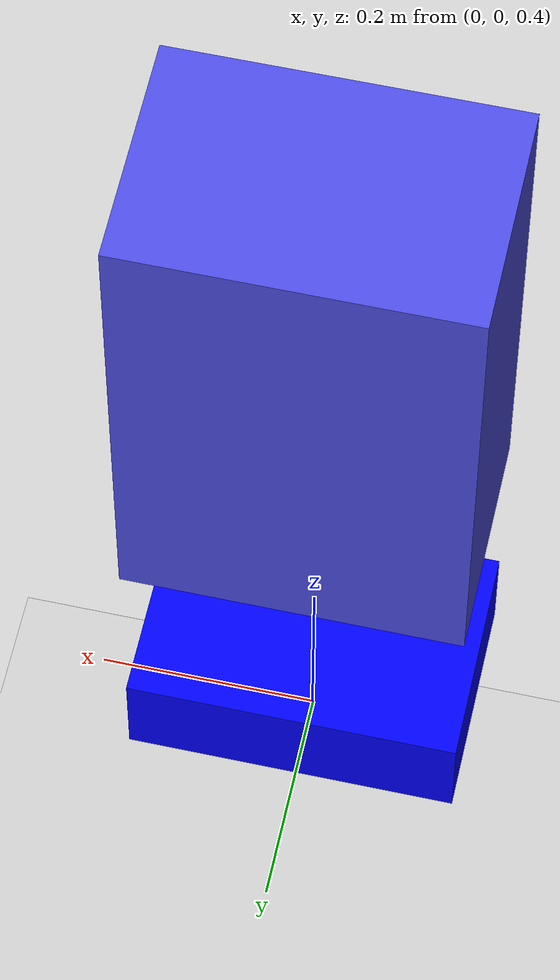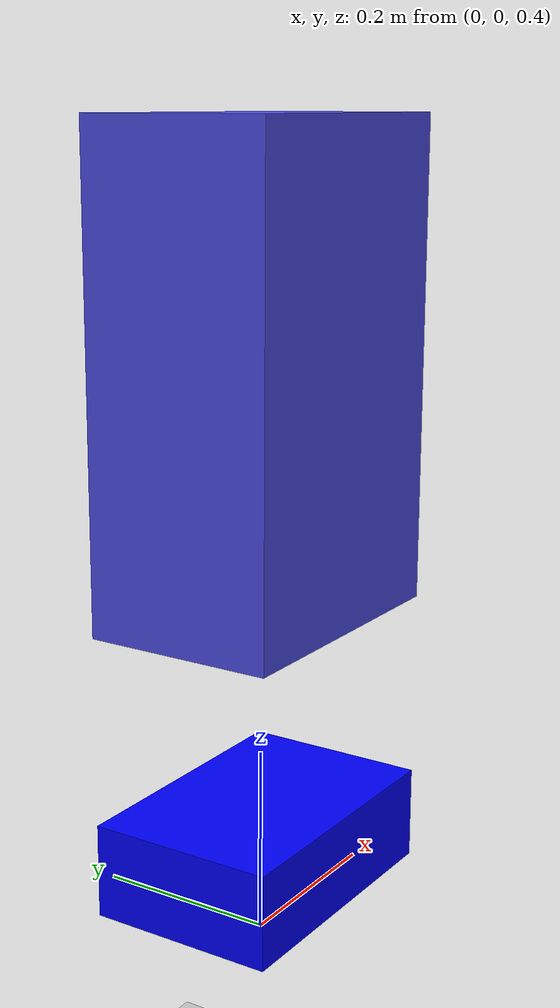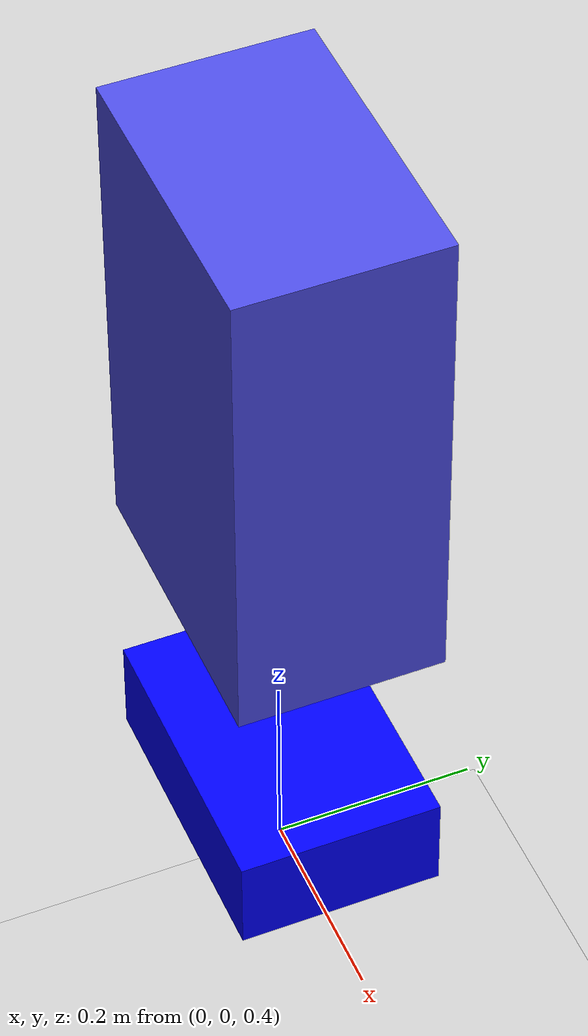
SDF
<?xml version="1.0" ?>
<sdf version="1.6">
  <world name="basic_robot_world">
    <include>
      <uri>model://ground_plane</uri>
    </include>

    <include>
      <uri>model://sun</uri>
    </include>

    <!-- Place our simple humanoid model in the world -->
    <include>
      <uri>model://simple_humanoid</uri>
    </include>

    <!-- Define the simple humanoid model if not using a separate model file -->
    <model name="simple_humanoid">
      <pose>0 0 0.5 0 0 0</pose>
      <link name="base_link">
        <visual name="visual">
          <geometry>
            <box>
              <size>0.3 0.2 0.1</size>
            </box>
          </geometry>
          <material>
            <ambient>0 0 1 1</ambient>
            <diffuse>0 0 1 1</diffuse>
            <specular>0 0 1 1</specular>
          </material>
        </visual>
        <collision name="collision">
          <geometry>
            <box>
              <size>0.3 0.2 0.1</size>
            </box>
          </geometry>
        </collision>
        <inertial>
          <mass>1.0</mass>
          <inertia>
            <ixx>0.1</ixx>
            <ixy>0.0</ixy>
            <ixz>0.0</ixz>
            <iyy>0.1</iyy>
            <iyz>0.0</iyz>
            <izz>0.1</izz>
          </inertia>
        </inertial>
      </link>
    </model>
  </world>
</sdf>

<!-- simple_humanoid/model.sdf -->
<sdf version="1.7">
  <model name="simple_humanoid">
    <pose>0 0 1 0 0 0</pose>

    <!-- Main body/chest link -->
    <link name="base_link">
      <inertial>
        <mass>5.0</mass>
        <inertia>
          <ixx>0.1</ixx>
          <ixy>0.0</ixy>
          <ixz>0.0</ixz>
          <iyy>0.1</iyy>
          <iyz>0.0</iyz>
          <izz>0.1</izz>
        </inertia>
      </inertial>

      <visual name="visual">
        <geometry>
          <box>
            <size>0.3 0.2 0.5</size>
          </box>
        </geometry>
        <material>
          <ambient>0.2 0.2 0.8 1</ambient>
          <diffuse>0.3 0.3 0.9 1</diffuse>
          <specular>0.1 0.1 0.1 1</specular>
        </material>
      </visual>

      <collision name="collision">
        <geometry>
          <box>
            <size>0.3 0.2 0.5</size>
          </box>
        </geometry>
      </collision>
    </link>

    <!-- Head link -->
    <link name="head">
      <inertial>
        <mass>1.0</mass>
        <inertia>
          <ixx>0.01</ixx>
          <ixy>0.0</ixy>
          <ixz>0.0</ixz>
          <iyy>0.01</iyy>
          <iyz>0.0</iyz>
          <izz>0.01</izz>
        </inertia>
      </inertial>

      <visual name="visual">
        <geometry>
          <sphere>
            <radius>0.1</radius>
          </sphere>
        </geometry>
        <material>
          <ambient>0.8 0.8 0.8 1</ambient>
          <diffuse>0.9 0.9 0.9 1</diffuse>
          <specular>0.2 0.2 0.2 1</specular>
        </material>
      </visual>

      <collision name="collision">
        <geometry>
          <sphere>
            <radius>0.1</radius>
          </sphere>
        </geometry>
      </collision>
    </link>

    <!-- Joint connecting head to body -->
    <joint name="neck_joint" type="revolute">
      <parent>base_link</parent>
      <child>head</child>
      <axis>
        <xyz>0 0 1</xyz>
        <limit>
          <lower>-1.57</lower>
          <upper>1.57</upper>
          <effort>10.0</effort>
          <velocity>1.0</velocity>
        </limit>
      </axis>
      <pose>0 0 0.4 0 0 0</pose>
    </joint>

    <!-- Left leg -->
    <link name="left_thigh">
      <inertial>
        <mass>2.0</mass>
        <inertia>
          <ixx>0.02</ixx>
          <ixy>0.0</ixy>
          <ixz>0.0</ixz>
          <iyy>0.02</iyy>
          <iyz>0.0</iyz>
          <izz>0.005</izz>
        </inertia>
      </inertial>

      <visual name="visual">
        <geometry>
          <cylinder>
            <radius>0.05</radius>
            <length>0.4</length>
          </cylinder>
        </geometry>
        <material>
          <ambient>0.8 0.2 0.2 1</ambient>
          <diffuse>0.9 0.3 0.3 1</diffuse>
          <specular>0.2 0.1 0.1 1</specular>
        </material>
      </visual>

      <collision name="collision">
        <geometry>
          <cylinder>
            <radius>0.05</radius>
            <length>0.4</length>
          </cylinder>
        </geometry>
      </collision>
    </link>

    <joint name="left_hip" type="revolute">
      <parent>base_link</parent>
      <child>left_thigh</child>
      <axis>
        <xyz>0 1 0</xyz>
        <limit>
          <lower>-1.57</lower>
          <upper>1.57</upper>
          <effort>20.0</effort>
          <velocity>2.0</velocity>
        </limit>
      </axis>
      <pose>-0.1 0 -0.25 0 0 0</pose>
    </joint>

    <!-- Right leg -->
    <link name="right_thigh">
      <inertial>
        <mass>2.0</mass>
        <inertia>
          <ixx>0.02</ixx>
          <ixy>0.0</ixy>
          <ixz>0.0</ixz>
          <iyy>0.02</iyy>
          <iyz>0.0</iyz>
          <izz>0.005</izz>
        </inertia>
      </inertial>

      <visual name="visual">
        <geometry>
          <cylinder>
            <radius>0.05</radius>
            <length>0.4</length>
          </cylinder>
        </geometry>
        <material>
          <ambient>0.8 0.2 0.2 1</ambient>
          <diffuse>0.9 0.3 0.3 1</diffuse>
          <specular>0.2 0.1 0.1 1</specular>
        </material>
      </visual>

      <collision name="collision">
        <geometry>
          <cylinder>
            <radius>0.05</radius>
            <length>0.4</length>
          </cylinder>
        </geometry>
      </collision>
    </link>

    <joint name="right_hip" type="revolute">
      <parent>base_link</parent>
      <child>right_thigh</child>
      <axis>
        <xyz>0 1 0</xyz>
        <limit>
          <lower>-1.57</lower>
          <upper>1.57</upper>
          <effort>20.0</effort>
          <velocity>2.0</velocity>
        </limit>
      </axis>
      <pose>0.1 0 -0.25 0 0 0</pose>
    </joint>

    <!-- Physics properties -->
    <static>false</static>
    <allow_auto_disable>true</allow_auto_disable>
  </model>
</sdf>
